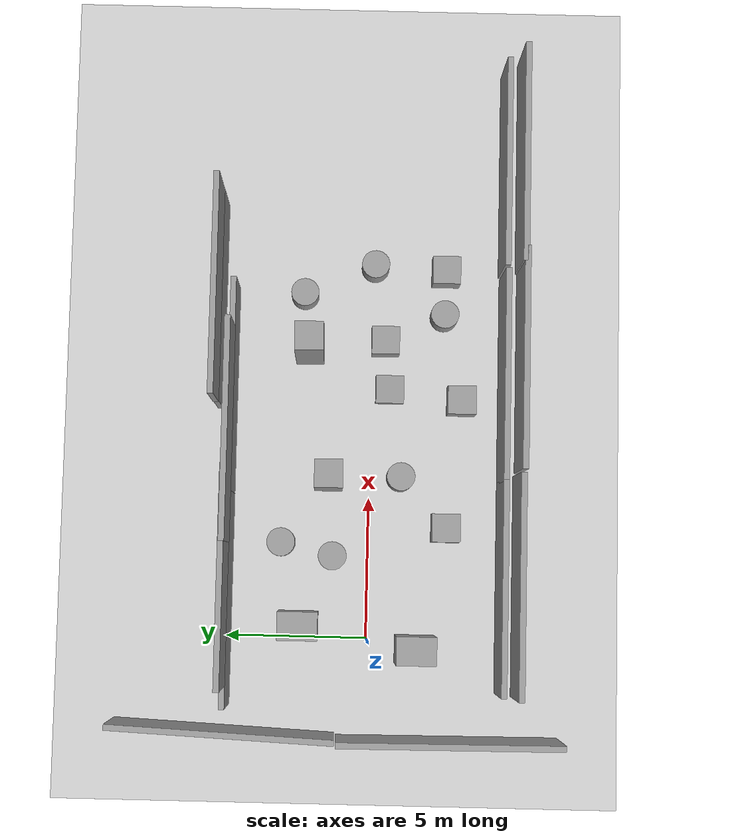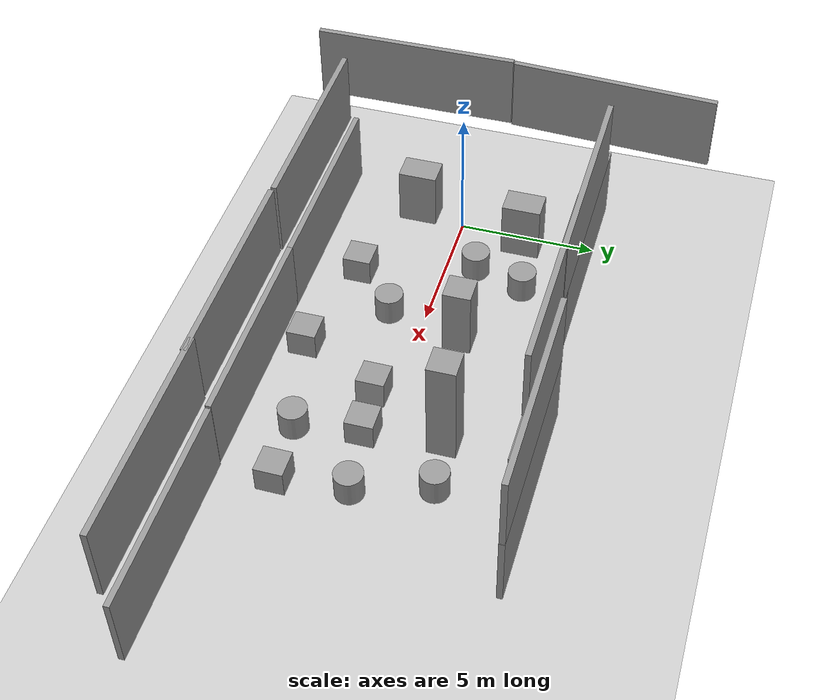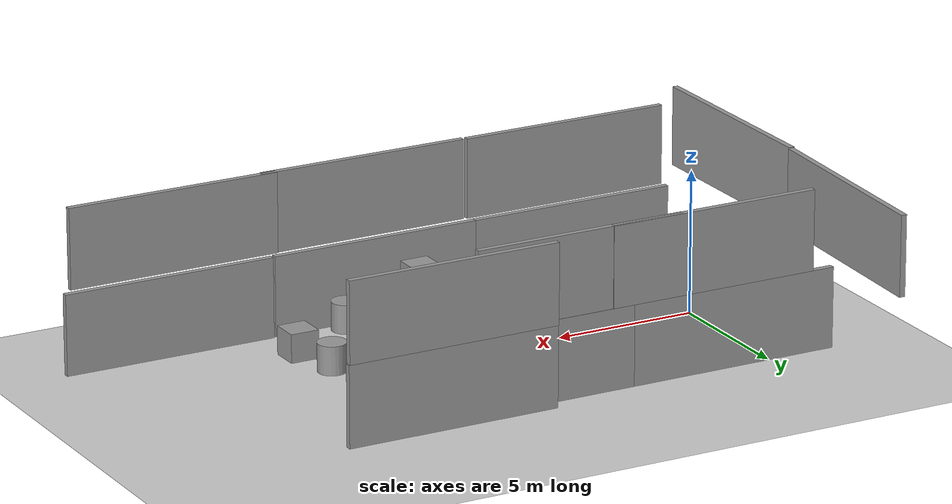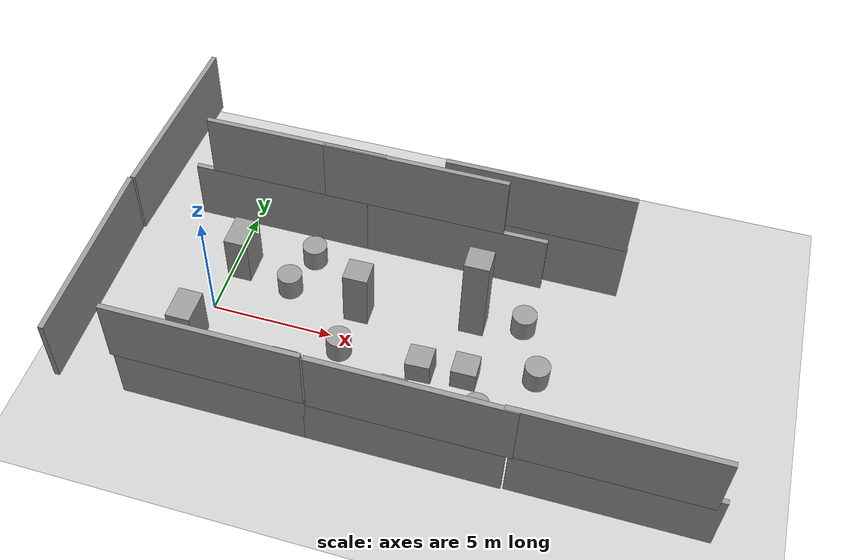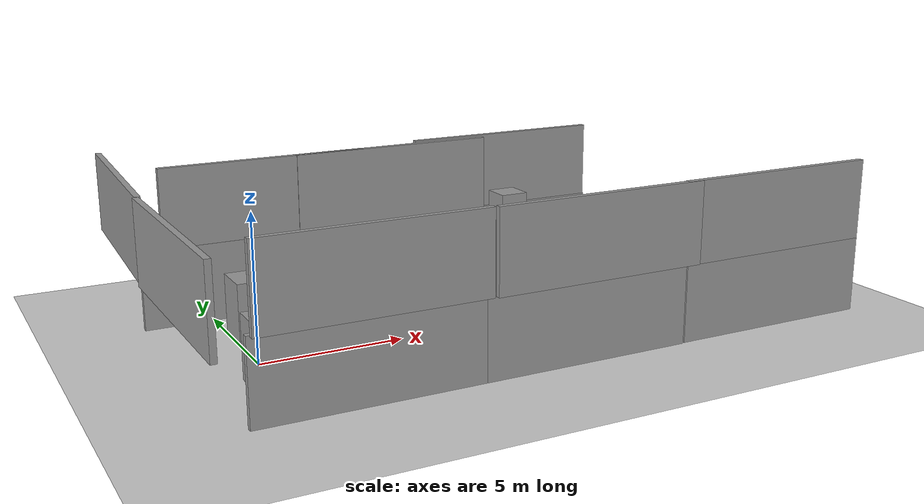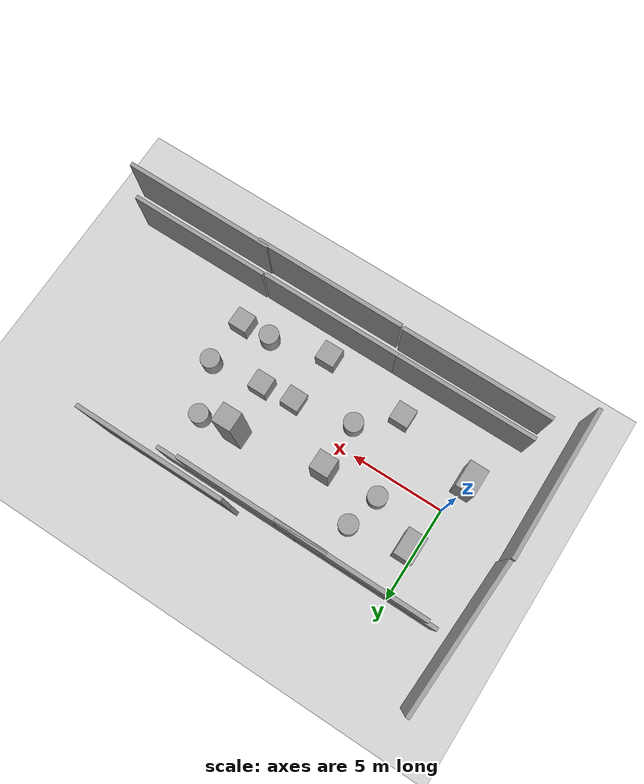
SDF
<sdf version="1.6">
 <world name="default">
  <light name="sun" type="directional">
   <pose>0 0 10 0 -0 0</pose>
   <diffuse>0.8 0.8 0.8 1</diffuse>
   <specular>0.2 0.2 0.2 1</specular>
   <attenuation>
    <range>1000</range>
    <constant>0.9</constant>
    <linear>0.01</linear>
    <quadratic>0.001</quadratic>
   </attenuation>
   <direction>-0.5 0.1 -0.9</direction>
  </light>
  <model name="ground_plane">
   <static>1</static>
   <link name="link">
    <collision name="collision">
     <geometry><plane><normal>0 0 1</normal><size>100 100</size></plane></geometry>
     <surface>
      <contact><collide_bitmask>65535</collide_bitmask></contact>
      <friction><ode><mu>100</mu><mu2>50</mu2></ode></friction>
     </surface>
    </collision>
    <visual name="visual">
     <cast_shadows>0</cast_shadows>
     <geometry><plane><normal>0 0 1</normal><size>100 100</size></plane></geometry>
     <material>
      <script><uri>file://media/materials/scripts/gazebo.material</uri><name>Gazebo/Grey</name></script>
     </material>
    </visual>
   </link>
  </model>
  <gravity>0 0 -9.8</gravity>
  <magnetic_field>6e-06 2.3e-05 -4.2e-05</magnetic_field>
  <atmosphere type="adiabatic"/>
  <physics name="default_physics" default="0" type="ode">
   <max_step_size>0.001</max_step_size>
   <real_time_factor>1</real_time_factor>
   <real_time_update_rate>1000</real_time_update_rate>
  </physics>
  <scene><ambient>0.4 0.4 0.4 1</ambient><background>0.7 0.7 0.7 1</background><shadows>1</shadows></scene>
  <spherical_coordinates>
   <surface_model>EARTH_WGS84</surface_model>
   <latitude_deg>0</latitude_deg>
   <longitude_deg>0</longitude_deg>
   <elevation>0</elevation>
   <heading_deg>0</heading_deg>
  </spherical_coordinates>
  <model name="unit_box">
   <pose>3.96658 -2.72226 1.09211 -1e-06 -0 0.000368</pose>
   <link name="link">
    <inertial>
     <mass>1</mass>
     <inertia>
      <ixx>0.166667</ixx>
      <ixy>0</ixy>
      <ixz>0</ixz>
      <iyy>0.166667</iyy>
      <iyz>0</iyz>
      <izz>0.166667</izz>
     </inertia>
    </inertial>
    <collision name="collision"><geometry><box><size>1 0.999993 1</size></box></geometry></collision>
    <visual name="visual">
     <geometry><box><size>1 0.999993 1</size></box></geometry>
     <material>
      <script><name>Gazebo/Grey</name><uri>file://media/materials/scripts/gazebo.material</uri></script>
     </material>
    </visual>
   </link>
  </model>
  <model name="unit_box_clone">
   <pose>8.44765 -3.17577 1.74595 0 -1e-06 0.008589</pose>
   <link name="link">
    <inertial>
     <mass>1</mass>
     <inertia>
      <ixx>0.166667</ixx>
      <ixy>0</ixy>
      <ixz>0</ixz>
      <iyy>0.166667</iyy>
      <iyz>0</iyz>
      <izz>0.166667</izz>
     </inertia>
    </inertial>
    <collision name="collision"><geometry><box><size>1 1 0.999999</size></box></geometry></collision>
    <visual name="visual">
     <geometry><box><size>1 1 0.999999</size></box></geometry>
     <material>
      <script><name>Gazebo/Grey</name><uri>file://media/materials/scripts/gazebo.material</uri></script>
     </material>
    </visual>
   </link>
  </model>
  <model name="unit_box_clone_0">
   <pose>8.92383 -0.666395 0.530943 0 -0.063974 -0.000118</pose>
   <link name="link">
    <inertial>
     <mass>1</mass>
     <inertia>
      <ixx>0.166667</ixx>
      <ixy>0</ixy>
      <ixz>0</ixz>
      <iyy>0.166667</iyy>
      <iyz>0</iyz>
      <izz>0.166667</izz>
     </inertia>
    </inertial>
    <collision name="collision"><geometry><box><size>1 1 1</size></box></geometry></collision>
    <visual name="visual">
     <geometry><box><size>1 1 1</size></box></geometry>
     <material>
      <script><name>Gazebo/Grey</name><uri>file://media/materials/scripts/gazebo.material</uri></script>
     </material>
    </visual>
   </link>
  </model>
  <model name="unit_box_clone_2">
   <pose>13.2817 -2.64397 0.5 0 -0 1e-06</pose>
   <link name="link">
    <inertial>
     <mass>1</mass>
     <inertia>
      <ixx>0.166667</ixx>
      <ixy>0</ixy>
      <ixz>0</ixz>
      <iyy>0.166667</iyy>
      <iyz>0</iyz>
      <izz>0.166667</izz>
     </inertia>
    </inertial>
    <collision name="collision"><geometry><box><size>1 1 1</size></box></geometry></collision>
    <visual name="visual">
     <geometry><box><size>1 1 1</size></box></geometry>
     <material>
      <script><name>Gazebo/Grey</name><uri>file://media/materials/scripts/gazebo.material</uri></script>
     </material>
    </visual>
   </link>
  </model>
  <model name="unit_cylinder">
   <pose>2.90387 1.26987 1.18052 2e-06 1e-06 0.04855</pose>
   <link name="link">
    <inertial>
     <mass>1</mass>
     <inertia><ixx>0.145833</ixx><ixy>0</ixy><ixz>0</ixz><iyy>0.145833</iyy><iyz>0</iyz><izz>0.125</izz></inertia>
    </inertial>
    <collision name="collision">
     <geometry><cylinder><radius>0.5</radius><length>1</length></cylinder></geometry>
    </collision>
    <visual name="visual">
     <geometry><cylinder><radius>0.5</radius><length>1</length></cylinder></geometry>
     <material>
      <script><name>Gazebo/Grey</name><uri>file://media/materials/scripts/gazebo.material</uri></script>
     </material>
    </visual>
   </link>
  </model>
  <model name="unit_cylinder_clone">
   <pose>5.73946 -1.09731 1.15962 -2e-06 0 0.000497</pose>
   <link name="link">
    <inertial>
     <mass>1</mass>
     <inertia><ixx>0.145833</ixx><ixy>0</ixy><ixz>0</ixz><iyy>0.145833</iyy><iyz>0</iyz><izz>0.125</izz></inertia>
    </inertial>
    <collision name="collision">
     <geometry><cylinder><radius>0.5</radius><length>1</length></cylinder></geometry>
    </collision>
    <visual name="visual">
     <geometry><cylinder><radius>0.5</radius><length>1</length></cylinder></geometry>
     <material>
      <script><name>Gazebo/Grey</name><uri>file://media/materials/scripts/gazebo.material</uri></script>
     </material>
    </visual>
   </link>
  </model>
  <model name="unit_cylinder_clone_0">
   <pose>3.35522 3.09059 1.0815 -4e-06 1e-06 0.000575</pose>
   <link name="link">
    <inertial>
     <mass>1</mass>
     <inertia><ixx>0.145833</ixx><ixy>0</ixy><ixz>0</ixz><iyy>0.145833</iyy><iyz>0</iyz><izz>0.125</izz></inertia>
    </inertial>
    <collision name="collision">
     <geometry><cylinder><radius>0.5</radius><length>0.999998</length></cylinder></geometry>
    </collision>
    <visual name="visual">
     <geometry><cylinder><radius>0.5</radius><length>0.999998</length></cylinder></geometry>
     <material>
      <script><name>Gazebo/Grey</name><uri>file://media/materials/scripts/gazebo.material</uri></script>
     </material>
    </visual>
   </link>
  </model>
  <model name="unit_cylinder_clone_1">
   <pose>13.3599 -0.069286 0.865011 -0.000777 0.008955 -0.014279</pose>
   <link name="link">
    <inertial>
     <mass>1</mass>
     <inertia><ixx>0.145833</ixx><ixy>0</ixy><ixz>0</ixz><iyy>0.145833</iyy><iyz>0</iyz><izz>0.125</izz></inertia>
    </inertial>
    <collision name="collision">
     <geometry><cylinder><radius>0.5</radius><length>0.999998</length></cylinder></geometry>
    </collision>
    <visual name="visual">
     <geometry><cylinder><radius>0.5</radius><length>0.999998</length></cylinder></geometry>
     <material>
      <script><name>Gazebo/Grey</name><uri>file://media/materials/scripts/gazebo.material</uri></script>
     </material>
    </visual>
   </link>
  </model>
  <model name="unit_cylinder_clone_2">
   <pose>11.5516 -2.56085 1.16055 -1e-06 -0 0.001464</pose>
   <link name="link">
    <inertial>
     <mass>1</mass>
     <inertia><ixx>0.145833</ixx><ixy>0</ixy><ixz>0</ixz><iyy>0.145833</iyy><iyz>0</iyz><izz>0.125</izz></inertia>
    </inertial>
    <collision name="collision">
     <geometry><cylinder><radius>0.5</radius><length>0.999999</length></cylinder></geometry>
    </collision>
    <visual name="visual">
     <geometry><cylinder><radius>0.5</radius><length>0.999999</length></cylinder></geometry>
     <material>
      <script><name>Gazebo/Grey</name><uri>file://media/materials/scripts/gazebo.material</uri></script>
     </material>
    </visual>
   </link>
  </model>
  <model name="unit_cylinder_clone_3">
   <pose>12.3464 2.45756 0.553966 -1e-06 -1e-06 -0.000251</pose>
   <link name="link">
    <inertial>
     <mass>1</mass>
     <inertia><ixx>0.145833</ixx><ixy>0</ixy><ixz>0</ixz><iyy>0.145833</iyy><iyz>0</iyz><izz>0.125</izz></inertia>
    </inertial>
    <collision name="collision">
     <geometry><cylinder><radius>0.5</radius><length>1</length></cylinder></geometry>
    </collision>
    <visual name="visual">
     <geometry><cylinder><radius>0.5</radius><length>1</length></cylinder></geometry>
     <material>
      <script><name>Gazebo/Grey</name><uri>file://media/materials/scripts/gazebo.material</uri></script>
     </material>
    </visual>
   </link>
  </model>
  <model name="unit_box_clone_4">
   <pose>0.439657 2.432 1.09211 5e-06 0 0.000553</pose>
   <link name="link">
    <inertial>
     <mass>1</mass>
     <inertia>
      <ixx>0.166667</ixx>
      <ixy>0</ixy>
      <ixz>0</ixz>
      <iyy>0.166667</iyy>
      <iyz>0</iyz>
      <izz>0.166667</izz>
     </inertia>
    </inertial>
    <collision name="collision"><geometry><box><size>1 1.41079 2.18423</size></box></geometry></collision>
    <visual name="visual">
     <geometry><box><size>1 1.41079 2.18423</size></box></geometry>
     <material>
      <script><name>Gazebo/Grey</name><uri>file://media/materials/scripts/gazebo.material</uri></script>
     </material>
    </visual>
   </link>
  </model>
  <model name="unit_box_clone_5">
   <pose>-0.33201 -1.72636 1.09211 1e-06 -0 0.000226</pose>
   <link name="link">
    <inertial>
     <mass>1</mass>
     <inertia>
      <ixx>0.166667</ixx>
      <ixy>0</ixy>
      <ixz>0</ixz>
      <iyy>0.166667</iyy>
      <iyz>0</iyz>
      <izz>0.166667</izz>
     </inertia>
    </inertial>
    <collision name="collision"><geometry><box><size>1 1.41079 2.18423</size></box></geometry></collision>
    <visual name="visual">
     <geometry><box><size>1 1.41079 2.18423</size></box></geometry>
     <material>
      <script><name>Gazebo/Grey</name><uri>file://media/materials/scripts/gazebo.material</uri></script>
     </material>
    </visual>
   </link>
  </model>
  <model name="grey_wall">
   <static>1</static>
   <link name="link">
    <pose>0 0 1.4 0 -0 0</pose>
    <collision name="collision"><geometry><box><size>7.5 0.2 2.8</size></box></geometry></collision>
    <visual name="visual">
     <cast_shadows>0</cast_shadows>
     <geometry><box><size>7.5 0.2 2.8</size></box></geometry>
     <material>
      <script>
       <uri>model://grey_wall/materials/scripts</uri>
       <uri>model://grey_wall/materials/textures</uri>
       <name>vrc/grey_wall</name>
      </script>
     </material>
    </visual>
   </link>
   <pose>1.32625 4.93895 0 0 -0 0</pose>
  </model>
  <model name="grey_wall_clone">
   <static>1</static>
   <link name="link">
    <pose>0 0 1.4 0 -0 0</pose>
    <collision name="collision"><geometry><box><size>7.5 0.2 2.8</size></box></geometry></collision>
    <visual name="visual">
     <cast_shadows>0</cast_shadows>
     <geometry><box><size>7.5 0.2 2.8</size></box></geometry>
     <material>
      <script>
       <uri>model://grey_wall/materials/scripts</uri>
       <uri>model://grey_wall/materials/textures</uri>
       <name>vrc/grey_wall</name>
      </script>
     </material>
    </visual>
   </link>
   <pose>8.81779 4.94201 0 0 -0 0</pose>
  </model>
  <model name="grey_wall_clone_0">
   <static>1</static>
   <link name="link">
    <pose>0 0 1.4 0 -0 0</pose>
    <collision name="collision"><geometry><box><size>7.5 0.2 2.8</size></box></geometry></collision>
    <visual name="visual">
     <cast_shadows>0</cast_shadows>
     <geometry><box><size>7.5 0.2 2.8</size></box></geometry>
     <material>
      <script>
       <uri>model://grey_wall/materials/scripts</uri>
       <uri>model://grey_wall/materials/textures</uri>
       <name>vrc/grey_wall</name>
      </script>
     </material>
    </visual>
   </link>
   <pose>9.34575 -4.71202 0 0 -0 0</pose>
  </model>
  <model name="grey_wall_clone_1">
   <static>1</static>
   <link name="link">
    <pose>0 0 1.4 0 -0 0</pose>
    <collision name="collision"><geometry><box><size>7.5 0.2 2.8</size></box></geometry></collision>
    <visual name="visual">
     <cast_shadows>0</cast_shadows>
     <geometry><box><size>7.5 0.2 2.8</size></box></geometry>
     <material>
      <script>
       <uri>model://grey_wall/materials/scripts</uri>
       <uri>model://grey_wall/materials/textures</uri>
       <name>vrc/grey_wall</name>
      </script>
     </material>
    </visual>
   </link>
   <pose>1.91677 -4.71202 0 0 -0 0</pose>
  </model>
  <model name="grey_wall_clone_2">
   <static>1</static>
   <link name="link">
    <pose>0 0 1.4 0 -0 0</pose>
    <collision name="collision"><geometry><box><size>7.5 0.2 2.8</size></box></geometry></collision>
    <visual name="visual">
     <cast_shadows>0</cast_shadows>
     <geometry><box><size>7.5 0.2 2.8</size></box></geometry>
     <material>
      <script>
       <uri>model://grey_wall/materials/scripts</uri>
       <uri>model://grey_wall/materials/textures</uri>
       <name>vrc/grey_wall</name>
      </script>
     </material>
    </visual>
   </link>
   <pose>16.9254 -4.67429 0 0 -0 0</pose>
  </model>
  <model name="grey_wall_clone_3">
   <static>1</static>
   <link name="link">
    <pose>0 0 1.4 0 -0 0</pose>
    <collision name="collision"><geometry><box><size>7.5 0.2 2.8</size></box></geometry></collision>
    <visual name="visual">
     <cast_shadows>0</cast_shadows>
     <geometry><box><size>7.5 0.2 2.8</size></box></geometry>
     <material>
      <script>
       <uri>model://grey_wall/materials/scripts</uri>
       <uri>model://grey_wall/materials/textures</uri>
       <name>vrc/grey_wall</name>
      </script>
     </material>
    </visual>
   </link>
   <pose>11.9099 5.43225 0 0 -0 0</pose>
  </model>
  <model name="grey_wall_clone_1_clone">
   <static>1</static>
   <link name="link">
    <pose>0 0 1.4 0 -0 0</pose>
    <collision name="collision"><geometry><box><size>7.5 0.2 2.8</size></box></geometry></collision>
    <visual name="visual">
     <cast_shadows>0</cast_shadows>
     <geometry><box><size>7.5 0.2 2.8</size></box></geometry>
     <material>
      <script>
       <uri>model://grey_wall/materials/scripts</uri>
       <uri>model://grey_wall/materials/textures</uri>
       <name>vrc/grey_wall</name>
      </script>
     </material>
    </visual>
   </link>
   <pose>2.01062 -5.00813 2.7989 0 -0 0</pose>
  </model>
  <model name="grey_wall_clone_1_clone_clone">
   <static>1</static>
   <link name="link">
    <pose>0 0 1.4 0 -0 0</pose>
    <collision name="collision"><geometry><box><size>7.5 0.2 2.8</size></box></geometry></collision>
    <visual name="visual">
     <cast_shadows>0</cast_shadows>
     <geometry><box><size>7.5 0.2 2.8</size></box></geometry>
     <material>
      <script>
       <uri>model://grey_wall/materials/scripts</uri>
       <uri>model://grey_wall/materials/textures</uri>
       <name>vrc/grey_wall</name>
      </script>
     </material>
    </visual>
   </link>
   <pose>9.61442 -5.05217 2.7989 0 -0 0</pose>
  </model>
  <model name="grey_wall_clone_1_clone_clone_clone">
   <static>1</static>
   <link name="link">
    <pose>0 0 1.4 0 -0 0</pose>
    <collision name="collision"><geometry><box><size>7.5 0.2 2.8</size></box></geometry></collision>
    <visual name="visual">
     <cast_shadows>0</cast_shadows>
     <geometry><box><size>7.5 0.2 2.8</size></box></geometry>
     <material>
      <script>
       <uri>model://grey_wall/materials/scripts</uri>
       <uri>model://grey_wall/materials/textures</uri>
       <name>vrc/grey_wall</name>
      </script>
     </material>
    </visual>
   </link>
   <pose>16.5797 -5.00155 2.7989 0 -0 0</pose>
  </model>
  <model name="grey_wall_clone_1_clone_clone_clone_0">
   <static>1</static>
   <link name="link">
    <pose>0 0 1.4 0 -0 0</pose>
    <collision name="collision"><geometry><box><size>7.5 0.2 2.8</size></box></geometry></collision>
    <visual name="visual">
     <cast_shadows>0</cast_shadows>
     <geometry><box><size>7.5 0.2 2.8</size></box></geometry>
     <material>
      <script>
       <uri>model://grey_wall/materials/scripts</uri>
       <uri>model://grey_wall/materials/textures</uri>
       <name>vrc/grey_wall</name>
      </script>
     </material>
    </visual>
   </link>
   <pose>2.10674 4.94625 2.7989 0 -0 0</pose>
  </model>
  <model name="grey_wall_clone_1_clone_clone_clone_1">
   <static>1</static>
   <link name="link">
    <pose>0 0 1.4 0 -0 0</pose>
    <collision name="collision"><geometry><box><size>7.5 0.2 2.8</size></box></geometry></collision>
    <visual name="visual">
     <cast_shadows>0</cast_shadows>
     <geometry><box><size>7.5 0.2 2.8</size></box></geometry>
     <material>
      <script>
       <uri>model://grey_wall/materials/scripts</uri>
       <uri>model://grey_wall/materials/textures</uri>
       <name>vrc/grey_wall</name>
      </script>
     </material>
    </visual>
   </link>
   <pose>7.02844 4.92648 2.7989 0 -0 0</pose>
  </model>
  <model name="grey_wall_clone_1_clone_clone_clone_1_clone">
   <static>1</static>
   <link name="link">
    <pose>0 0 1.4 0 -0 0</pose>
    <collision name="collision"><geometry><box><size>7.5 0.2 2.8</size></box></geometry></collision>
    <visual name="visual">
     <cast_shadows>0</cast_shadows>
     <geometry><box><size>7.5 0.2 2.8</size></box></geometry>
     <material>
      <script>
       <uri>model://grey_wall/materials/scripts</uri>
       <uri>model://grey_wall/materials/textures</uri>
       <name>vrc/grey_wall</name>
      </script>
     </material>
    </visual>
   </link>
   <pose>11.8851 5.43415 2.7989 0 -0 0</pose>
  </model>
  <model name="grey_wall_clone_1_clone_clone_0">
   <static>1</static>
   <link name="link">
    <pose>0 0 1.4 0 -0 0</pose>
    <collision name="collision"><geometry><box><size>7.5 0.2 2.8</size></box></geometry></collision>
    <visual name="visual">
     <cast_shadows>0</cast_shadows>
     <geometry><box><size>7.5 0.2 2.8</size></box></geometry>
     <material>
      <script>
       <uri>model://grey_wall/materials/scripts</uri>
       <uri>model://grey_wall/materials/textures</uri>
       <name>vrc/grey_wall</name>
      </script>
     </material>
    </visual>
   </link>
   <pose>-3.21261 -2.73063 2.7989 0 -0 1.57788</pose>
  </model>
  <model name="grey_wall_clone_1_clone_clone_0_clone">
   <static>1</static>
   <link name="link">
    <pose>0 0 1.4 0 -0 0</pose>
    <collision name="collision"><geometry><box><size>7.5 0.2 2.8</size></box></geometry></collision>
    <visual name="visual">
     <cast_shadows>0</cast_shadows>
     <geometry><box><size>7.5 0.2 2.8</size></box></geometry>
     <material>
      <script>
       <uri>model://grey_wall/materials/scripts</uri>
       <uri>model://grey_wall/materials/textures</uri>
       <name>vrc/grey_wall</name>
      </script>
     </material>
    </visual>
   </link>
   <pose>-2.99629 4.81759 2.7989 0 -0 1.52486</pose>
  </model>
  <model name="unit_box_clone_clone">
   <pose>10.6791 -0.482849 0.5 0 -0 0.008535</pose>
   <link name="link">
    <inertial>
     <mass>1</mass>
     <inertia>
      <ixx>0.166667</ixx>
      <ixy>0</ixy>
      <ixz>0</ixz>
      <iyy>0.166667</iyy>
      <iyz>0</iyz>
      <izz>0.166667</izz>
     </inertia>
    </inertial>
    <collision name="collision"><geometry><box><size>1 1 1</size></box></geometry></collision>
    <visual name="visual">
     <geometry><box><size>1 1 1</size></box></geometry>
     <material>
      <script><name>Gazebo/Grey</name><uri>file://media/materials/scripts/gazebo.material</uri></script>
     </material>
    </visual>
   </link>
  </model>
  <model name="unit_box_clone_clone_clone">
   <pose>10.35 2.22643 2.03423 0 1e-06 0.008512</pose>
   <link name="link">
    <inertial>
     <mass>1</mass>
     <inertia>
      <ixx>0.166667</ixx>
      <ixy>0</ixy>
      <ixz>0</ixz>
      <iyy>0.166667</iyy>
      <iyz>0</iyz>
      <izz>0.166667</izz>
     </inertia>
    </inertial>
    <collision name="collision"><geometry><box><size>1 1 4.06846</size></box></geometry></collision>
    <visual name="visual">
     <geometry><box><size>1 1 4.06846</size></box></geometry>
     <material>
      <script><name>Gazebo/Grey</name><uri>file://media/materials/scripts/gazebo.material</uri></script>
     </material>
    </visual>
   </link>
  </model>
  <model name="unit_box_clone_clone_clone_clone">
   <pose>5.74467 1.45947 1.32434 0 -0 0.008569</pose>
   <link name="link">
    <inertial>
     <mass>1</mass>
     <inertia>
      <ixx>0.166667</ixx>
      <ixy>0</ixy>
      <ixz>0</ixz>
      <iyy>0.166667</iyy>
      <iyz>0</iyz>
      <izz>0.166667</izz>
     </inertia>
    </inertial>
    <collision name="collision"><geometry><box><size>1 1 2.64867</size></box></geometry></collision>
    <visual name="visual">
     <geometry><box><size>1 1 2.64867</size></box></geometry>
     <material>
      <script><name>Gazebo/Grey</name><uri>file://media/materials/scripts/gazebo.material</uri></script>
     </material>
    </visual>
   </link>
  </model>
 </world>
</sdf>
